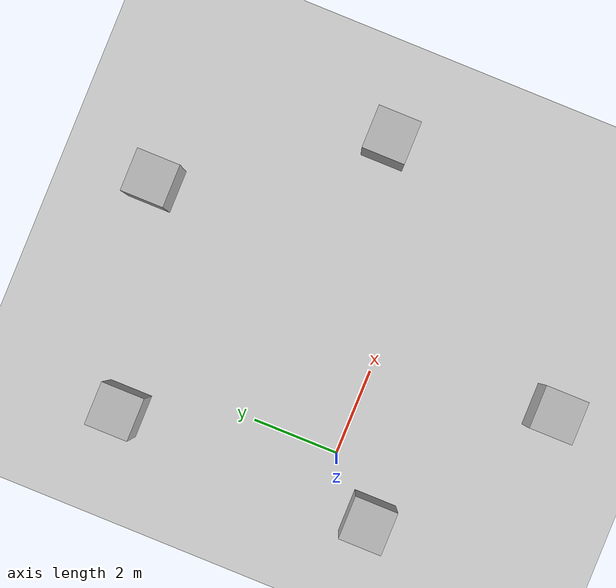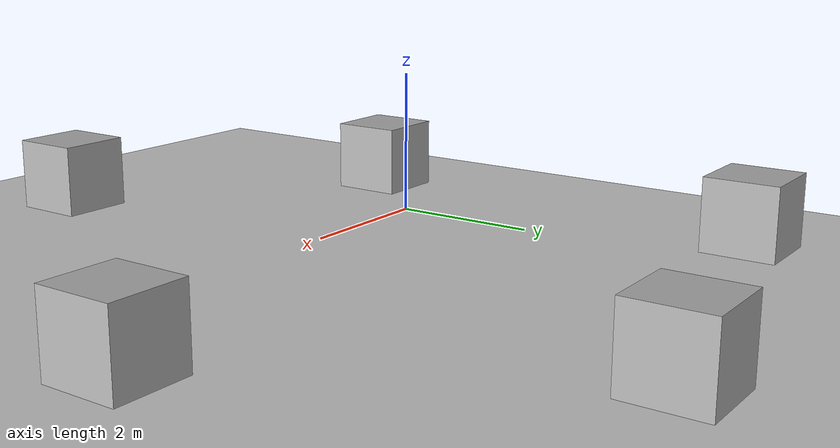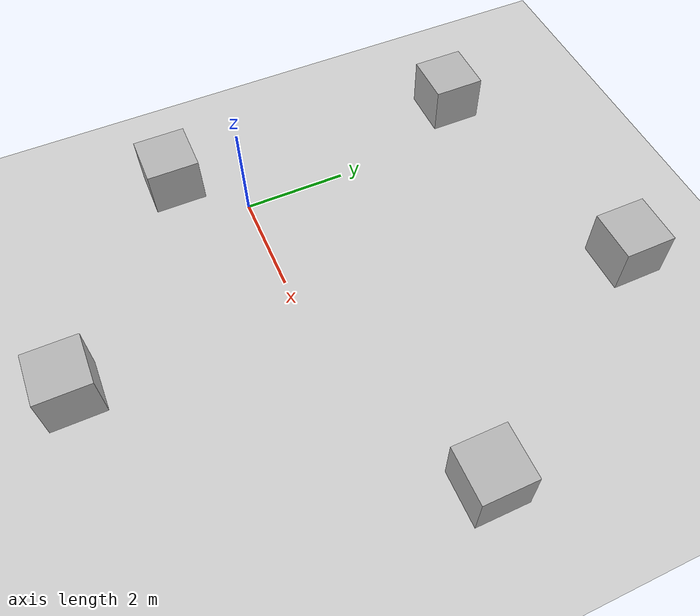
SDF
<sdf version='1.10'>
  <world name='empty'>
    <physics name="1ms" type="ignored">
      <max_step_size>0.001</max_step_size>
      <real_time_factor>1.0</real_time_factor>
    </physics>
    <plugin
      filename="gz-sim-physics-system"
      name="gz::sim::systems::Physics">
    </plugin>
    <plugin
      filename="gz-sim-sensors-system"
      name="gz::sim::systems::Sensors">
      <render_engine>ogre2</render_engine>
    </plugin>
    <plugin
      filename="gz-sim-scene-broadcaster-system"
      name="gz::sim::systems::SceneBroadcaster">
    </plugin>
    <plugin
      filename="gz-sim-user-commands-system"
      name="gz::sim::systems::UserCommands">
    </plugin>
    <plugin filename="gz-sim-imu-system"
      name="gz::sim::systems::Imu">
</plugin>
    <gravity>0 0 -9.8000000000000007</gravity>
    <magnetic_field>5.5644999999999998e-06 2.2875799999999999e-05 -4.2388400000000002e-05</magnetic_field>
    <atmosphere type='adiabatic'/>
    <scene>
      <ambient>0.400000006 0.400000006 0.400000006 1</ambient>
      <background>0.699999988 0.699999988 0.699999988 1</background>
      <shadows>true</shadows>
    </scene>
    <model name='ground_plane'>
      <static>true</static>
      <link name='link'>
        <collision name='collision'>
          <geometry>
            <plane>
              <normal>0 0 1</normal>
              <size>100 100</size>
            </plane>
          </geometry>
          <surface>
            <friction>
              <ode/>
            </friction>
            <bounce/>
            <contact/>
          </surface>
        </collision>
        <visual name='visual'>
          <geometry>
            <plane>
              <normal>0 0 1</normal>
              <size>100 100</size>
            </plane>
          </geometry>
          <material>
            <ambient>0.800000012 0.800000012 0.800000012 1</ambient>
            <diffuse>0.800000012 0.800000012 0.800000012 1</diffuse>
            <specular>0.800000012 0.800000012 0.800000012 1</specular>
          </material>
        </visual>
        <pose>0 0 0 0 0 0</pose>
        <inertial>
          <pose>0 0 0 0 0 0</pose>
          <mass>1</mass>
          <inertia>
            <ixx>1</ixx>
            <ixy>0</ixy>
            <ixz>0</ixz>
            <iyy>1</iyy>
            <iyz>0</iyz>
            <izz>1</izz>
          </inertia>
        </inertial>
        <enable_wind>false</enable_wind>
      </link>
      <pose>0 0 0 0 0 0</pose>
      <self_collide>false</self_collide>
    </model>
    <model name='box'>
      <pose>-0.88123680307951968 4.855295793763319 0.5 0 0 0</pose>
      <link name='box_link'>
        <inertial>
          <inertia>
            <ixx>0.16666</ixx>
            <ixy>0</ixy>
            <ixz>0</ixz>
            <iyy>0.16666</iyy>
            <iyz>0</iyz>
            <izz>0.16666</izz>
          </inertia>
          <mass>1</mass>
          <pose>0 0 0 0 0 0</pose>
        </inertial>
        <collision name='box_collision'>
          <geometry>
            <box>
              <size>1 1 1</size>
            </box>
          </geometry>
          <surface>
            <friction>
              <ode/>
            </friction>
            <bounce/>
            <contact/>
          </surface>
        </collision>
        <visual name='box_visual'>
          <geometry>
            <box>
              <size>1 1 1</size>
            </box>
          </geometry>
          <material>
            <ambient>0.300000012 0.300000012 0.300000012 1</ambient>
            <diffuse>0.699999988 0.699999988 0.699999988 1</diffuse>
            <specular>1 1 1 1</specular>
          </material>
        </visual>
        <pose>0 0 0 0 0 0</pose>
        <enable_wind>false</enable_wind>
      </link>
      <static>false</static>
      <self_collide>false</self_collide>
    </model>
    <model name='box_0'>
      <pose>4.1175369582552168 6.0451784781815938 0.5 0 0 0</pose>
      <link name='box_link'>
        <inertial>
          <inertia>
            <ixx>0.16666</ixx>
            <ixy>0</ixy>
            <ixz>0</ixz>
            <iyy>0.16666</iyy>
            <iyz>0</iyz>
            <izz>0.16666</izz>
          </inertia>
          <mass>1</mass>
          <pose>0 0 0 0 0 0</pose>
        </inertial>
        <collision name='box_collision'>
          <geometry>
            <box>
              <size>1 1 1</size>
            </box>
          </geometry>
          <surface>
            <friction>
              <ode/>
            </friction>
            <bounce/>
            <contact/>
          </surface>
        </collision>
        <visual name='box_visual'>
          <geometry>
            <box>
              <size>1 1 1</size>
            </box>
          </geometry>
          <material>
            <ambient>0.300000012 0.300000012 0.300000012 1</ambient>
            <diffuse>0.699999988 0.699999988 0.699999988 1</diffuse>
            <specular>1 1 1 1</specular>
          </material>
        </visual>
        <pose>0 0 0 0 0 0</pose>
        <enable_wind>false</enable_wind>
      </link>
      <static>false</static>
      <self_collide>false</self_collide>
    </model>
    <model name='box_1'>
      <pose>6.9560891345334337 1.5332795577511102 0.5 0 0 0</pose>
      <link name='box_link'>
        <inertial>
          <inertia>
            <ixx>0.16666</ixx>
            <ixy>0</ixy>
            <ixz>0</ixz>
            <iyy>0.16666</iyy>
            <iyz>0</iyz>
            <izz>0.16666</izz>
          </inertia>
          <mass>1</mass>
          <pose>0 0 0 0 0 0</pose>
        </inertial>
        <collision name='box_collision'>
          <geometry>
            <box>
              <size>1 1 1</size>
            </box>
          </geometry>
          <surface>
            <friction>
              <ode/>
            </friction>
            <bounce/>
            <contact/>
          </surface>
        </collision>
        <visual name='box_visual'>
          <geometry>
            <box>
              <size>1 1 1</size>
            </box>
          </geometry>
          <material>
            <ambient>0.300000012 0.300000012 0.300000012 1</ambient>
            <diffuse>0.699999988 0.699999988 0.699999988 1</diffuse>
            <specular>1 1 1 1</specular>
          </material>
        </visual>
        <pose>0 0 0 0 0 0</pose>
        <enable_wind>false</enable_wind>
      </link>
      <static>false</static>
      <self_collide>false</self_collide>
    </model>
    <model name='box_2'>
      <pose>2.6796382473142568 -4.1325230151372274 0.5 0 0 0</pose>
      <link name='box_link'>
        <inertial>
          <inertia>
            <ixx>0.16666</ixx>
            <ixy>0</ixy>
            <ixz>0</ixz>
            <iyy>0.16666</iyy>
            <iyz>0</iyz>
            <izz>0.16666</izz>
          </inertia>
          <mass>1</mass>
          <pose>0 0 0 0 0 0</pose>
        </inertial>
        <collision name='box_collision'>
          <geometry>
            <box>
              <size>1 1 1</size>
            </box>
          </geometry>
          <surface>
            <friction>
              <ode/>
            </friction>
            <bounce/>
            <contact/>
          </surface>
        </collision>
        <visual name='box_visual'>
          <geometry>
            <box>
              <size>1 1 1</size>
            </box>
          </geometry>
          <material>
            <ambient>0.300000012 0.300000012 0.300000012 1</ambient>
            <diffuse>0.699999988 0.699999988 0.699999988 1</diffuse>
            <specular>1 1 1 1</specular>
          </material>
        </visual>
        <pose>0 0 0 0 0 0</pose>
        <enable_wind>false</enable_wind>
      </link>
      <static>false</static>
      <self_collide>false</self_collide>
    </model>
    <model name='box_3'>
      <pose>-1.1088321679902 -1.1917959673521312 0.5 0 0 0</pose>
      <link name='box_link'>
        <inertial>
          <inertia>
            <ixx>0.16666</ixx>
            <ixy>0</ixy>
            <ixz>0</ixz>
            <iyy>0.16666</iyy>
            <iyz>0</iyz>
            <izz>0.16666</izz>
          </inertia>
          <mass>1</mass>
          <pose>0 0 0 0 0 0</pose>
        </inertial>
        <collision name='box_collision'>
          <geometry>
            <box>
              <size>1 1 1</size>
            </box>
          </geometry>
          <surface>
            <friction>
              <ode/>
            </friction>
            <bounce/>
            <contact/>
          </surface>
        </collision>
        <visual name='box_visual'>
          <geometry>
            <box>
              <size>1 1 1</size>
            </box>
          </geometry>
          <material>
            <ambient>0.300000012 0.300000012 0.300000012 1</ambient>
            <diffuse>0.699999988 0.699999988 0.699999988 1</diffuse>
            <specular>1 1 1 1</specular>
          </material>
        </visual>
        <pose>0 0 0 0 0 0</pose>
        <enable_wind>false</enable_wind>
      </link>
      <static>false</static>
      <self_collide>false</self_collide>
    </model>
    <light name='sun' type='directional'>
      <pose>0 0 10 0 0 0</pose>
      <cast_shadows>true</cast_shadows>
      <intensity>1</intensity>
      <direction>-0.5 0.10000000000000001 -0.90000000000000002</direction>
      <diffuse>0.800000012 0.800000012 0.800000012 1</diffuse>
      <specular>0.200000003 0.200000003 0.200000003 1</specular>
      <attenuation>
        <range>1000</range>
        <linear>0.01</linear>
        <constant>0.90000000000000002</constant>
        <quadratic>0.001</quadratic>
      </attenuation>
      <spot>
        <inner_angle>0</inner_angle>
        <outer_angle>0</outer_angle>
        <falloff>0</falloff>
      </spot>
    </light>
  </world>
</sdf>
